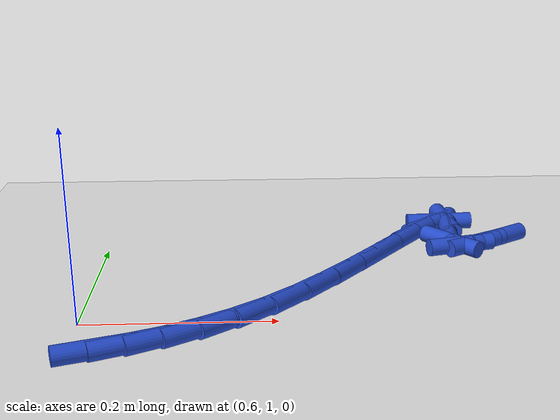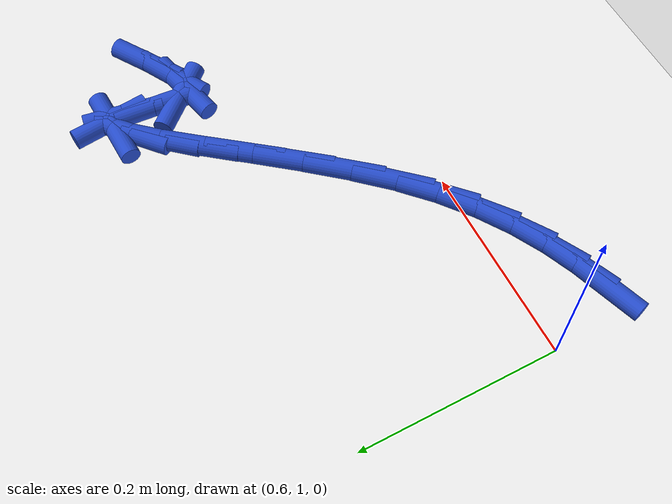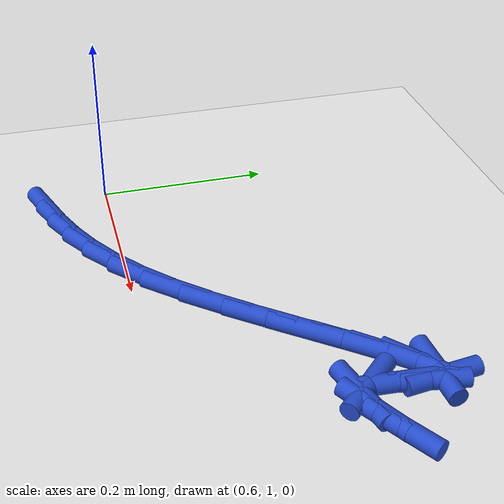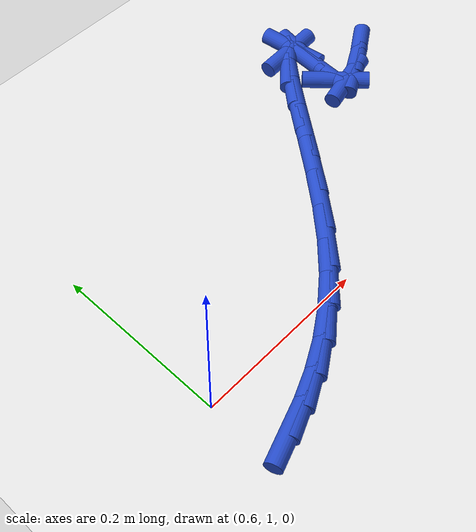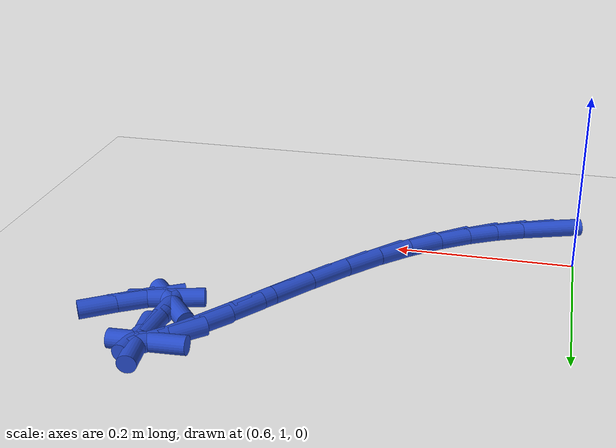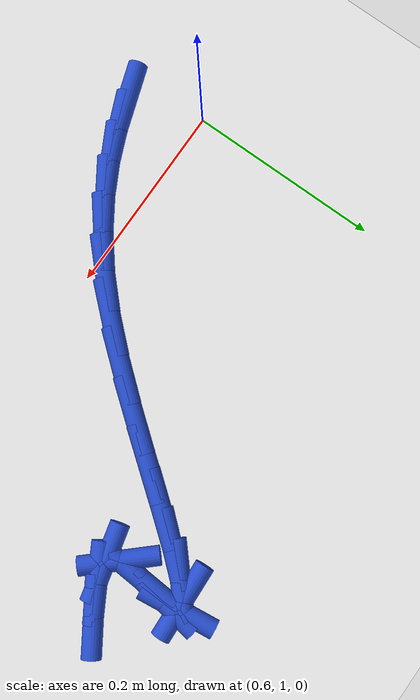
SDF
<sdf version="1.6">
 <world name="default">
  <model name="ground_plane">
   <static>1</static>
   <link name="link">
    <collision name="collision">
     <geometry><plane><normal>0 0 1</normal><size>100 100</size></plane></geometry>
     <surface><friction><ode><mu>100</mu><mu2>50</mu2></ode></friction></surface>
    </collision>
    <visual name="visual">
     <cast_shadows>0</cast_shadows>
     <geometry><plane><normal>0 0 1</normal><size>100 100</size></plane></geometry>
     <material>
      <script><uri>file://media/materials/scripts/gazebo.material</uri><name>Gazebo/WhiteGlow</name></script>
     </material>
    </visual>
   </link>
  </model>
  <model name="line">
   <link name="link_40">
    <pose>0.6305980253165426 0.9276636239438728 0.01 0 1.57 0.32909638938551616</pose>
    <collision name="collision">
     <geometry><cylinder><radius>0.01</radius><length>0.08</length></cylinder></geometry>
    </collision>
    <visual name="visual">
     <material>
      <script><name>Gazebo/Blue</name><uri>file://media/materials/scripts/gazebo.material</uri></script>
     </material>
     <geometry><cylinder><radius>0.01</radius><length>0.08</length></cylinder></geometry>
    </visual>
   </link>
   <link name="link_41">
    <pose>0.6605248872640128 0.9378841127953172 0.01 0 1.57 0.4019606466635266</pose>
    <collision name="collision">
     <geometry><cylinder><radius>0.01</radius><length>0.08</length></cylinder></geometry>
    </collision>
    <visual name="visual">
     <material>
      <script><name>Gazebo/Blue</name><uri>file://media/materials/scripts/gazebo.material</uri></script>
     </material>
     <geometry><cylinder><radius>0.01</radius><length>0.08</length></cylinder></geometry>
    </visual>
   </link>
   <link name="link_42">
    <pose>0.6911048114768015 0.9508838299900721 0.01 0 1.57 0.48607593936403165</pose>
    <collision name="collision">
     <geometry><cylinder><radius>0.01</radius><length>0.08</length></cylinder></geometry>
    </collision>
    <visual name="visual">
     <material>
      <script><name>Gazebo/Blue</name><uri>file://media/materials/scripts/gazebo.material</uri></script>
     </material>
     <geometry><cylinder><radius>0.01</radius><length>0.08</length></cylinder></geometry>
    </visual>
   </link>
   <link name="link_43">
    <pose>0.7222919770595572 0.9673618240819537 0.01 0 1.57 0.5767900251005003</pose>
    <collision name="collision">
     <geometry><cylinder><radius>0.01</radius><length>0.08</length></cylinder></geometry>
    </collision>
    <visual name="visual">
     <material>
      <script><name>Gazebo/Blue</name><uri>file://media/materials/scripts/gazebo.material</uri></script>
     </material>
     <geometry><cylinder><radius>0.01</radius><length>0.08</length></cylinder></geometry>
    </visual>
   </link>
   <link name="link_44">
    <pose>0.754040563116928 0.9880171436247775 0.01 0 1.57 0.6694333928839052</pose>
    <collision name="collision">
     <geometry><cylinder><radius>0.01</radius><length>0.08</length></cylinder></geometry>
    </collision>
    <visual name="visual">
     <material>
      <script><name>Gazebo/Blue</name><uri>file://media/materials/scripts/gazebo.material</uri></script>
     </material>
     <geometry><cylinder><radius>0.01</radius><length>0.08</length></cylinder></geometry>
    </visual>
   </link>
   <link name="link_45">
    <pose>0.7863047487535633 1.0135488371723604 0.01 0 1.57 0.7595817913945431</pose>
    <collision name="collision">
     <geometry><cylinder><radius>0.01</radius><length>0.08</length></cylinder></geometry>
    </collision>
    <visual name="visual">
     <material>
      <script><name>Gazebo/Blue</name><uri>file://media/materials/scripts/gazebo.material</uri></script>
     </material>
     <geometry><cylinder><radius>0.01</radius><length>0.08</length></cylinder></geometry>
    </visual>
   </link>
   <link name="link_46">
    <pose>0.8190314305761562 1.0446279195994272 0.01 0 1.57 0.832020393626202</pose>
    <collision name="collision">
     <geometry><cylinder><radius>0.01</radius><length>0.08</length></cylinder></geometry>
    </collision>
    <visual name="visual">
     <material>
      <script><name>Gazebo/Blue</name><uri>file://media/materials/scripts/gazebo.material</uri></script>
     </material>
     <geometry><cylinder><radius>0.01</radius><length>0.08</length></cylinder></geometry>
    </visual>
   </link>
   <link name="link_47">
    <pose>0.8518338441374842 1.0806409911515429 0.01 0 1.57 0.8774825774836054</pose>
    <collision name="collision">
     <geometry><cylinder><radius>0.01</radius><length>0.08</length></cylinder></geometry>
    </collision>
    <visual name="visual">
     <material>
      <script><name>Gazebo/Blue</name><uri>file://media/materials/scripts/gazebo.material</uri></script>
     </material>
     <geometry><cylinder><radius>0.01</radius><length>0.08</length></cylinder></geometry>
    </visual>
   </link>
   <link name="link_48">
    <pose>0.8838600375732023 1.1191839320701162 0.01 0 1.57 0.9034594612172229</pose>
    <collision name="collision">
     <geometry><cylinder><radius>0.01</radius><length>0.08</length></cylinder></geometry>
    </collision>
    <visual name="visual">
     <material>
      <script><name>Gazebo/Blue</name><uri>file://media/materials/scripts/gazebo.material</uri></script>
     </material>
     <geometry><cylinder><radius>0.01</radius><length>0.08</length></cylinder></geometry>
    </visual>
   </link>
   <link name="link_49">
    <pose>0.9142235572158856 1.1577198093116767 0.01 0 1.57 0.912864501387793</pose>
    <collision name="collision">
     <geometry><cylinder><radius>0.01</radius><length>0.08</length></cylinder></geometry>
    </collision>
    <visual name="visual">
     <material>
      <script><name>Gazebo/Blue</name><uri>file://media/materials/scripts/gazebo.material</uri></script>
     </material>
     <geometry><cylinder><radius>0.01</radius><length>0.08</length></cylinder></geometry>
    </visual>
   </link>
   <link name="link_50">
    <pose>0.9420379493981104 1.1937116898327538 0.01 0 1.57 0.9029967884187035</pose>
    <collision name="collision">
     <geometry><cylinder><radius>0.01</radius><length>0.08</length></cylinder></geometry>
    </collision>
    <visual name="visual">
     <material>
      <script><name>Gazebo/Blue</name><uri>file://media/materials/scripts/gazebo.material</uri></script>
     </material>
     <geometry><cylinder><radius>0.01</radius><length>0.08</length></cylinder></geometry>
    </visual>
   </link>
   <link name="link_51">
    <pose>0.9664167604524517 1.224622640589876 0.01 0 1.57 0.8599155647145901</pose>
    <collision name="collision">
     <geometry><cylinder><radius>0.01</radius><length>0.08</length></cylinder></geometry>
    </collision>
    <visual name="visual">
     <material>
      <script><name>Gazebo/Blue</name><uri>file://media/materials/scripts/gazebo.material</uri></script>
     </material>
     <geometry><cylinder><radius>0.01</radius><length>0.08</length></cylinder></geometry>
    </visual>
   </link>
   <link name="link_52">
    <pose>0.9864735367114854 1.2479157285395734 0.01 0 1.57 0.7243734689024477</pose>
    <collision name="collision">
     <geometry><cylinder><radius>0.01</radius><length>0.08</length></cylinder></geometry>
    </collision>
    <visual name="visual">
     <material>
      <script><name>Gazebo/Blue</name><uri>file://media/materials/scripts/gazebo.material</uri></script>
     </material>
     <geometry><cylinder><radius>0.01</radius><length>0.08</length></cylinder></geometry>
    </visual>
   </link>
   <link name="link_53">
    <pose>1.0013218245077873 1.2610540206383747 0.01 0 1.57 0.05097209771861916</pose>
    <collision name="collision">
     <geometry><cylinder><radius>0.01</radius><length>0.08</length></cylinder></geometry>
    </collision>
    <visual name="visual">
     <material>
      <script><name>Gazebo/Blue</name><uri>file://media/materials/scripts/gazebo.material</uri></script>
     </material>
     <geometry><cylinder><radius>0.01</radius><length>0.08</length></cylinder></geometry>
    </visual>
   </link>
   <link name="link_54">
    <pose>1.0100751701739328 1.261500583842809 0.01 0 1.57 -1.451494243946697</pose>
    <collision name="collision">
     <geometry><cylinder><radius>0.01</radius><length>0.08</length></cylinder></geometry>
    </collision>
    <visual name="visual">
     <material>
      <script><name>Gazebo/Blue</name><uri>file://media/materials/scripts/gazebo.material</uri></script>
     </material>
     <geometry><cylinder><radius>0.01</radius><length>0.08</length></cylinder></geometry>
    </visual>
   </link>
   <link name="link_55">
    <pose>1.0118471200424977 1.246718485109406 0.01 0 1.57 1.4133061294663467</pose>
    <collision name="collision">
     <geometry><cylinder><radius>0.01</radius><length>0.08</length></cylinder></geometry>
    </collision>
    <visual name="visual">
     <material>
      <script><name>Gazebo/Blue</name><uri>file://media/materials/scripts/gazebo.material</uri></script>
     </material>
     <geometry><cylinder><radius>0.01</radius><length>0.08</length></cylinder></geometry>
    </visual>
   </link>
   <link name="link_56">
    <pose>1.0070901542676762 1.2167637869534886 0.01 0 1.57 1.5041528170533307</pose>
    <collision name="collision">
     <geometry><cylinder><radius>0.01</radius><length>0.08</length></cylinder></geometry>
    </collision>
    <visual name="visual">
     <material>
      <script><name>Gazebo/Blue</name><uri>file://media/materials/scripts/gazebo.material</uri></script>
     </material>
     <geometry><cylinder><radius>0.01</radius><length>0.08</length></cylinder></geometry>
    </visual>
   </link>
   <link name="link_57">
    <pose>1.0052436531778344 1.1890976776781532 0.01 0 1.57 -0.8276141087509942</pose>
    <collision name="collision">
     <geometry><cylinder><radius>0.01</radius><length>0.08</length></cylinder></geometry>
    </collision>
    <visual name="visual">
     <material>
      <script><name>Gazebo/Blue</name><uri>file://media/materials/scripts/gazebo.material</uri></script>
     </material>
     <geometry><cylinder><radius>0.01</radius><length>0.08</length></cylinder></geometry>
    </visual>
   </link>
   <link name="link_58">
    <pose>1.0145503832916996 1.178970018716499 0.01 0 1.57 0.24892030870415183</pose>
    <collision name="collision">
     <geometry><cylinder><radius>0.01</radius><length>0.08</length></cylinder></geometry>
    </collision>
    <visual name="visual">
     <material>
      <script><name>Gazebo/Blue</name><uri>file://media/materials/scripts/gazebo.material</uri></script>
     </material>
     <geometry><cylinder><radius>0.01</radius><length>0.08</length></cylinder></geometry>
    </visual>
   </link>
   <link name="link_59">
    <pose>1.0340022251989207 1.183914524254335 0.01 0 1.57 0.5147857321639768</pose>
    <collision name="collision">
     <geometry><cylinder><radius>0.01</radius><length>0.08</length></cylinder></geometry>
    </collision>
    <visual name="visual">
     <material>
      <script><name>Gazebo/Blue</name><uri>file://media/materials/scripts/gazebo.material</uri></script>
     </material>
     <geometry><cylinder><radius>0.01</radius><length>0.08</length></cylinder></geometry>
    </visual>
   </link>
   <link name="link_60">
    <pose>1.0615692609070304 1.1995080586891178 0.01 0 1.57 0.5752343237194483</pose>
    <collision name="collision">
     <geometry><cylinder><radius>0.01</radius><length>0.08</length></cylinder></geometry>
    </collision>
    <visual name="visual">
     <material>
      <script><name>Gazebo/Blue</name><uri>file://media/materials/scripts/gazebo.material</uri></script>
     </material>
     <geometry><cylinder><radius>0.01</radius><length>0.08</length></cylinder></geometry>
    </visual>
   </link>
  </model>
 </world>
</sdf>
